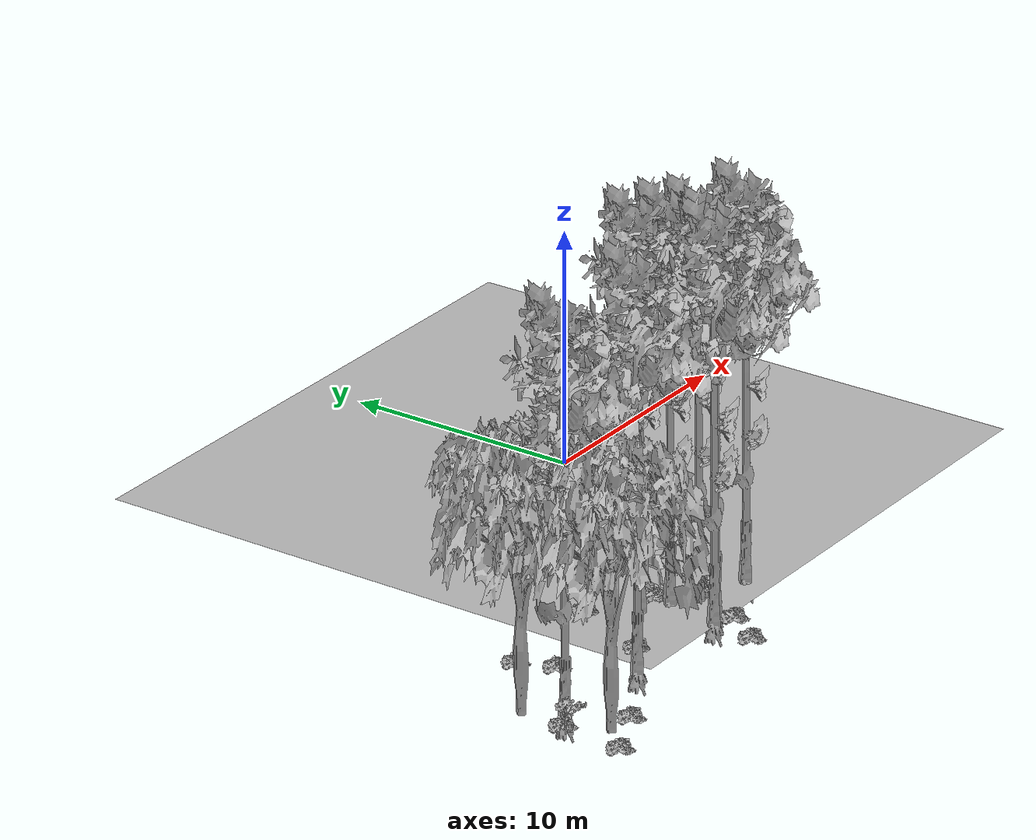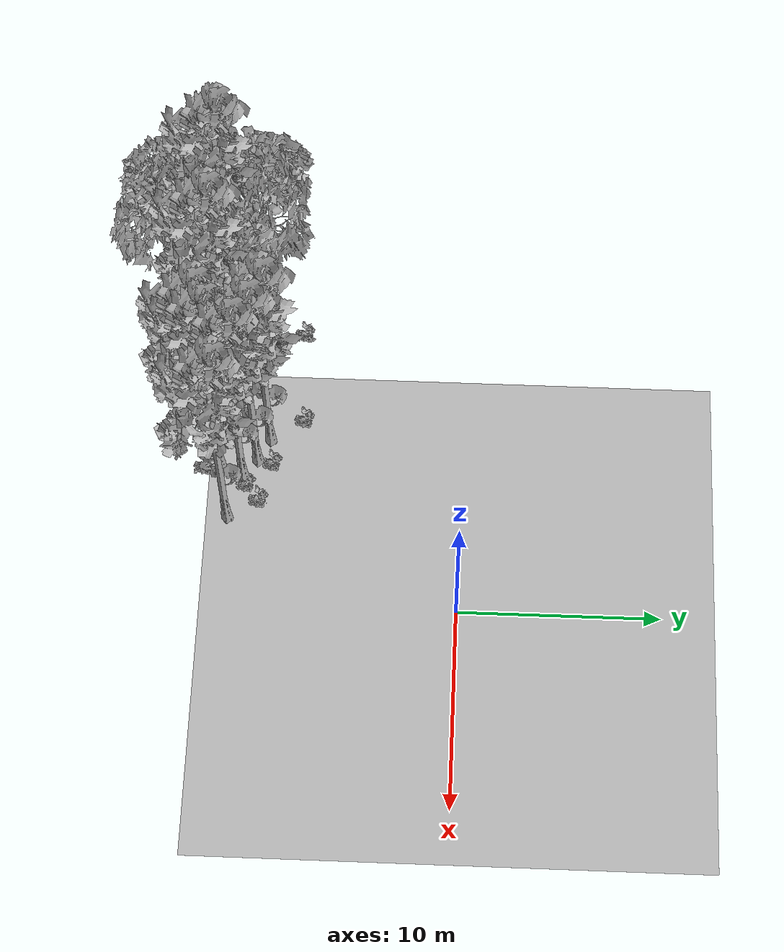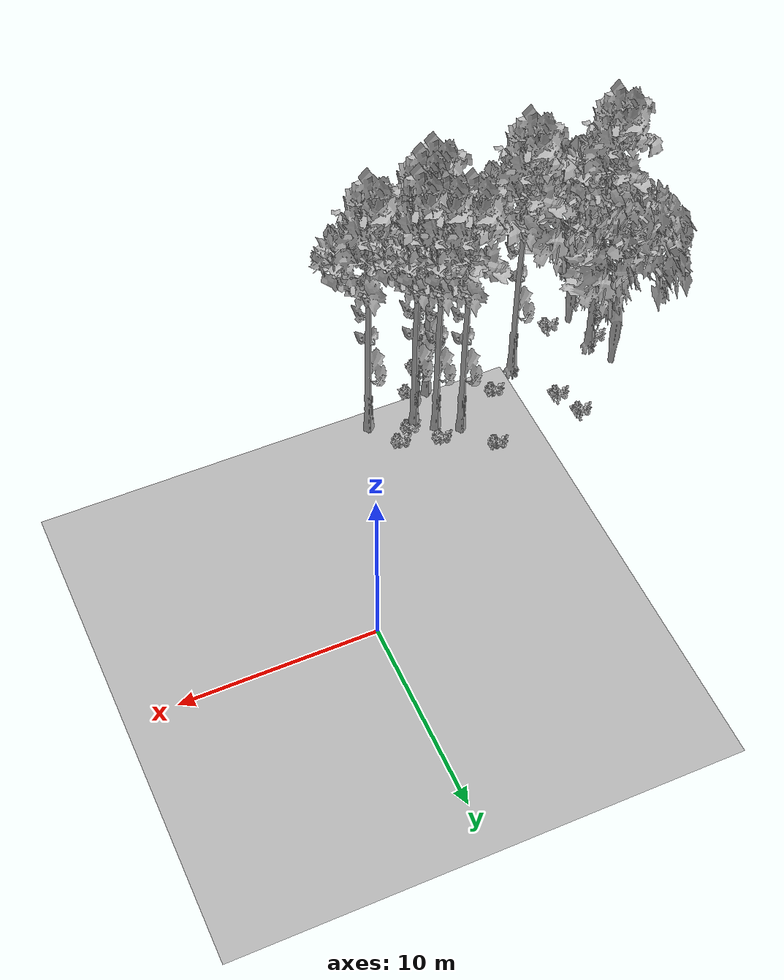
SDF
<sdf version="1.7">
 <world name="default">
  <model name="ground_plane">
   <static>1</static>
   <link name="link">
    <collision name="collision">
     <pose>-50 0 0 0 -0 0</pose>
     <geometry><plane><normal>0 0 1</normal><size>80 80</size></plane></geometry>
     <surface><contact><ode><min_depth>0.01</min_depth><max_vel>0</max_vel></ode></contact></surface>
    </collision>
    <visual name="grass">
     <cast_shadows>0</cast_shadows>
     <geometry>
      <mesh>
       <scale>0.46714285714285714 0.46714285714285714 0.1</scale>
       <uri>file://grass_plane/meshes/grass_plane.dae</uri>
      </mesh>
     </geometry>
    </visual>
   </link>
  </model>
  <model name="Tree 2">
   <static>1</static>
   <pose>-8.287499990798413 -12.534664791595755 0 1.57079 -0 0</pose>
   <link name="link">
    <collision name="collision">
     <geometry><mesh><scale>3.5 5 3.5</scale><uri>model://tree_9/meshes/tree_9.obj</uri></mesh></geometry>
    </collision>
    <visual name="visual">
     <geometry><mesh><scale>3.5 5 3.5</scale><uri>model://tree_9/meshes/tree_9.obj</uri></mesh></geometry>
    </visual>
   </link>
  </model>
  <model name="Tree 9">
   <static>1</static>
   <pose>-4.585492454988575 -11.526857596979355 0 1.57079 -0 0</pose>
   <link name="link">
    <collision name="collision">
     <geometry><mesh><scale>3.5 5 3.5</scale><uri>model://tree_9/meshes/tree_9.obj</uri></mesh></geometry>
    </collision>
    <visual name="visual">
     <geometry><mesh><scale>3.5 5 3.5</scale><uri>model://tree_9/meshes/tree_9.obj</uri></mesh></geometry>
    </visual>
   </link>
  </model>
  <model name="Tree 39">
   <static>1</static>
   <pose>-17.554176460517972 -14.14704630180988 0 1.57079 -0 0</pose>
   <link name="link">
    <collision name="collision">
     <geometry><mesh><scale>3.5 5 3.5</scale><uri>model://tree_2/meshes/tree_2.obj</uri></mesh></geometry>
    </collision>
    <visual name="visual">
     <geometry><mesh><scale>3.5 5 3.5</scale><uri>model://tree_2/meshes/tree_2.obj</uri></mesh></geometry>
    </visual>
   </link>
  </model>
  <model name="Tree 197">
   <static>1</static>
   <pose>-8.902450769357547 -9.621278393449213 0 1.57079 -0 0</pose>
   <link name="link">
    <collision name="collision">
     <geometry><mesh><scale>3.5 5 3.5</scale><uri>model://tree_9/meshes/tree_9.obj</uri></mesh></geometry>
    </collision>
    <visual name="visual">
     <geometry><mesh><scale>3.5 5 3.5</scale><uri>model://tree_9/meshes/tree_9.obj</uri></mesh></geometry>
    </visual>
   </link>
  </model>
  <model name="Tree 286">
   <static>1</static>
   <pose>-13.182797006492635 -12.378276575841873 0 1.57079 -0 0</pose>
   <link name="link">
    <collision name="collision">
     <geometry><mesh><scale>3.5 5 3.5</scale><uri>model://tree_9/meshes/tree_9.obj</uri></mesh></geometry>
    </collision>
    <visual name="visual">
     <geometry><mesh><scale>3.5 5 3.5</scale><uri>model://tree_9/meshes/tree_9.obj</uri></mesh></geometry>
    </visual>
   </link>
  </model>
  <model name="Tree 432">
   <static>1</static>
   <pose>-7.477757369828442 -12.077589425480841 0 1.57079 -0 0</pose>
   <link name="link">
    <collision name="collision">
     <geometry><mesh><scale>3.5 5 3.5</scale><uri>model://tree_9/meshes/tree_9.obj</uri></mesh></geometry>
    </collision>
    <visual name="visual">
     <geometry><mesh><scale>3.5 5 3.5</scale><uri>model://tree_9/meshes/tree_9.obj</uri></mesh></geometry>
    </visual>
   </link>
  </model>
  <model name="Tree 522">
   <static>1</static>
   <pose>-7.750017881586913 -10.201684501571762 0 1.57079 -0 0</pose>
   <link name="link">
    <collision name="collision">
     <geometry><mesh><scale>3.5 5 3.5</scale><uri>model://tree_9/meshes/tree_9.obj</uri></mesh></geometry>
    </collision>
    <visual name="visual">
     <geometry><mesh><scale>3.5 5 3.5</scale><uri>model://tree_9/meshes/tree_9.obj</uri></mesh></geometry>
    </visual>
   </link>
  </model>
  <model name="Tree 541">
   <static>1</static>
   <pose>-18.293330670709825 -10.673013561247746 0 1.57079 -0 0</pose>
   <link name="link">
    <collision name="collision">
     <geometry><mesh><scale>3.5 5 3.5</scale><uri>model://tree_2/meshes/tree_2.obj</uri></mesh></geometry>
    </collision>
    <visual name="visual">
     <geometry><mesh><scale>3.5 5 3.5</scale><uri>model://tree_2/meshes/tree_2.obj</uri></mesh></geometry>
    </visual>
   </link>
  </model>
  <model name="Tree 590">
   <static>1</static>
   <pose>-6.828929521437956 -10.871849884434273 0 1.57079 -0 0</pose>
   <link name="link">
    <collision name="collision">
     <geometry><mesh><scale>3.5 5 3.5</scale><uri>model://tree_9/meshes/tree_9.obj</uri></mesh></geometry>
    </collision>
    <visual name="visual">
     <geometry><mesh><scale>3.5 5 3.5</scale><uri>model://tree_9/meshes/tree_9.obj</uri></mesh></geometry>
    </visual>
   </link>
  </model>
  <model name="Tree 618">
   <static>1</static>
   <pose>-17.723332122977652 -12.277760927088963 0 1.57079 -0 0</pose>
   <link name="link">
    <collision name="collision">
     <geometry><mesh><scale>3.5 5 3.5</scale><uri>model://tree_9/meshes/tree_9.obj</uri></mesh></geometry>
    </collision>
    <visual name="visual">
     <geometry><mesh><scale>3.5 5 3.5</scale><uri>model://tree_9/meshes/tree_9.obj</uri></mesh></geometry>
    </visual>
   </link>
  </model>
  <model name="Bush 12">
   <static>1</static>
   <pose>-18.527173683953514 -15.235256443704337 0 1.57079 -0 0</pose>
   <link name="link">
    <collision name="collision">
     <geometry><mesh><scale>2 2 2</scale><uri>model://bush_2/meshes/bush_2.obj</uri></mesh></geometry>
     <surface><contact><collide_without_contact>false</collide_without_contact></contact></surface>
    </collision>
    <visual name="visual">
     <geometry><mesh><scale>2 2 2</scale><uri>model://bush_2/meshes/bush_2.obj</uri></mesh></geometry>
    </visual>
   </link>
  </model>
  <model name="Bush 40">
   <static>1</static>
   <pose>-18.576825566592042 -12.90597383487669 0 1.57079 -0 0</pose>
   <link name="link">
    <collision name="collision">
     <geometry><mesh><scale>2 2 2</scale><uri>model://bush_5/meshes/bush_5.obj</uri></mesh></geometry>
     <surface><contact><collide_without_contact>false</collide_without_contact></contact></surface>
    </collision>
    <visual name="visual">
     <geometry><mesh><scale>2 2 2</scale><uri>model://bush_5/meshes/bush_5.obj</uri></mesh></geometry>
    </visual>
   </link>
  </model>
  <model name="Bush 168">
   <static>1</static>
   <pose>-15.177771452606418 -8.259004862567192 0 1.57079 -0 0</pose>
   <link name="link">
    <collision name="collision">
     <geometry><mesh><scale>2 2 2</scale><uri>model://bush_2/meshes/bush_2.obj</uri></mesh></geometry>
     <surface><contact><collide_without_contact>false</collide_without_contact></contact></surface>
    </collision>
    <visual name="visual">
     <geometry><mesh><scale>2 2 2</scale><uri>model://bush_2/meshes/bush_2.obj</uri></mesh></geometry>
    </visual>
   </link>
  </model>
  <model name="Bush 176">
   <static>1</static>
   <pose>-14.610874646690583 -9.71693572522043 0 1.57079 -0 0</pose>
   <link name="link">
    <collision name="collision">
     <geometry><mesh><scale>2 2 2</scale><uri>model://bush_2/meshes/bush_2.obj</uri></mesh></geometry>
     <surface><contact><collide_without_contact>false</collide_without_contact></contact></surface>
    </collision>
    <visual name="visual">
     <geometry><mesh><scale>2 2 2</scale><uri>model://bush_2/meshes/bush_2.obj</uri></mesh></geometry>
    </visual>
   </link>
  </model>
  <model name="Bush 258">
   <static>1</static>
   <pose>-6.576768591260397 -10.753908541267563 0 1.57079 -0 0</pose>
   <link name="link">
    <collision name="collision">
     <geometry><mesh><scale>2 2 2</scale><uri>model://bush_2/meshes/bush_2.obj</uri></mesh></geometry>
     <surface><contact><collide_without_contact>false</collide_without_contact></contact></surface>
    </collision>
    <visual name="visual">
     <geometry><mesh><scale>2 2 2</scale><uri>model://bush_2/meshes/bush_2.obj</uri></mesh></geometry>
    </visual>
   </link>
  </model>
  <model name="Bush 308">
   <static>1</static>
   <pose>-16.308349168603808 -14.215254743020704 0 1.57079 -0 0</pose>
   <link name="link">
    <collision name="collision">
     <geometry><mesh><scale>2 2 2</scale><uri>model://bush_2/meshes/bush_2.obj</uri></mesh></geometry>
     <surface><contact><collide_without_contact>false</collide_without_contact></contact></surface>
    </collision>
    <visual name="visual">
     <geometry><mesh><scale>2 2 2</scale><uri>model://bush_2/meshes/bush_2.obj</uri></mesh></geometry>
    </visual>
   </link>
  </model>
  <model name="Bush 329">
   <static>1</static>
   <pose>-18.27879922778918 -12.533080534080831 0 1.57079 -0 0</pose>
   <link name="link">
    <collision name="collision">
     <geometry><mesh><scale>2 2 2</scale><uri>model://bush_2/meshes/bush_2.obj</uri></mesh></geometry>
     <surface><contact><collide_without_contact>false</collide_without_contact></contact></surface>
    </collision>
    <visual name="visual">
     <geometry><mesh><scale>2 2 2</scale><uri>model://bush_2/meshes/bush_2.obj</uri></mesh></geometry>
    </visual>
   </link>
  </model>
  <model name="Bush 358">
   <static>1</static>
   <pose>-8.534903615457345 -14.379389922923195 0 1.57079 -0 0</pose>
   <link name="link">
    <collision name="collision">
     <geometry><mesh><scale>2 2 2</scale><uri>model://bush_2/meshes/bush_2.obj</uri></mesh></geometry>
     <surface><contact><collide_without_contact>false</collide_without_contact></contact></surface>
    </collision>
    <visual name="visual">
     <geometry><mesh><scale>2 2 2</scale><uri>model://bush_2/meshes/bush_2.obj</uri></mesh></geometry>
    </visual>
   </link>
  </model>
  <model name="Bush 371">
   <static>1</static>
   <pose>-11.62622062715473 -11.27481302655342 0 1.57079 -0 0</pose>
   <link name="link">
    <collision name="collision">
     <geometry><mesh><scale>2 2 2</scale><uri>model://bush_2/meshes/bush_2.obj</uri></mesh></geometry>
     <surface><contact><collide_without_contact>false</collide_without_contact></contact></surface>
    </collision>
    <visual name="visual">
     <geometry><mesh><scale>2 2 2</scale><uri>model://bush_2/meshes/bush_2.obj</uri></mesh></geometry>
    </visual>
   </link>
  </model>
  <model name="Bush 387">
   <static>1</static>
   <pose>-7.474117237774539 -12.923704696855385 0 1.57079 -0 0</pose>
   <link name="link">
    <collision name="collision">
     <geometry><mesh><scale>2 2 2</scale><uri>model://bush_2/meshes/bush_2.obj</uri></mesh></geometry>
     <surface><contact><collide_without_contact>false</collide_without_contact></contact></surface>
    </collision>
    <visual name="visual">
     <geometry><mesh><scale>2 2 2</scale><uri>model://bush_2/meshes/bush_2.obj</uri></mesh></geometry>
    </visual>
   </link>
  </model>
  <model name="Bush 515">
   <static>1</static>
   <pose>-5.751478081230779 -10.080622142933038 0 1.57079 -0 0</pose>
   <link name="link">
    <collision name="collision">
     <geometry><mesh><scale>2 2 2</scale><uri>model://bush_2/meshes/bush_2.obj</uri></mesh></geometry>
     <surface><contact><collide_without_contact>false</collide_without_contact></contact></surface>
    </collision>
    <visual name="visual">
     <geometry><mesh><scale>2 2 2</scale><uri>model://bush_2/meshes/bush_2.obj</uri></mesh></geometry>
    </visual>
   </link>
  </model>
  <model name="Bush 561">
   <static>1</static>
   <pose>-10.250346538485893 -8.010830693220488 0 1.57079 -0 0</pose>
   <link name="link">
    <collision name="collision">
     <geometry><mesh><scale>2 2 2</scale><uri>model://bush_2/meshes/bush_2.obj</uri></mesh></geometry>
     <surface><contact><collide_without_contact>false</collide_without_contact></contact></surface>
    </collision>
    <visual name="visual">
     <geometry><mesh><scale>2 2 2</scale><uri>model://bush_2/meshes/bush_2.obj</uri></mesh></geometry>
    </visual>
   </link>
  </model>
  <model name="Bush 615">
   <static>1</static>
   <pose>-7.7866947685972185 -9.493438045035614 0 1.57079 -0 0</pose>
   <link name="link">
    <collision name="collision">
     <geometry><mesh><scale>2 2 2</scale><uri>model://bush_2/meshes/bush_2.obj</uri></mesh></geometry>
     <surface><contact><collide_without_contact>false</collide_without_contact></contact></surface>
    </collision>
    <visual name="visual">
     <geometry><mesh><scale>2 2 2</scale><uri>model://bush_2/meshes/bush_2.obj</uri></mesh></geometry>
    </visual>
   </link>
  </model>
 </world>
</sdf>
